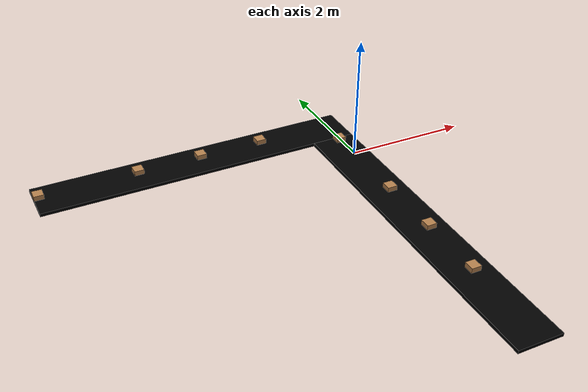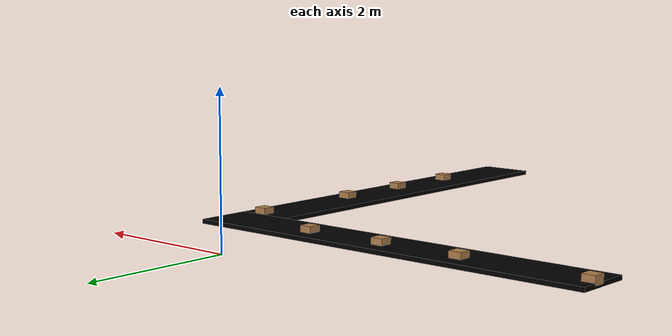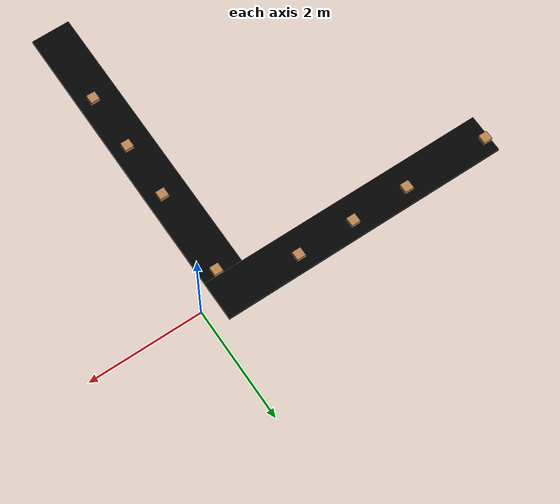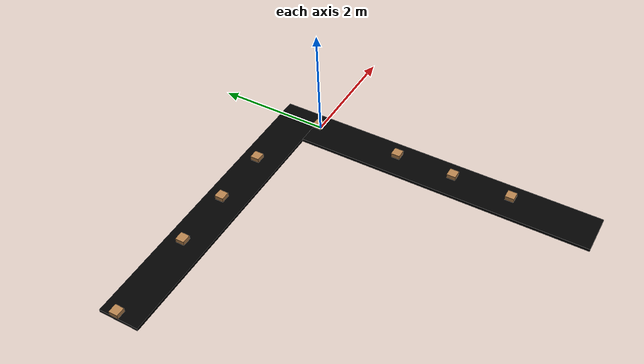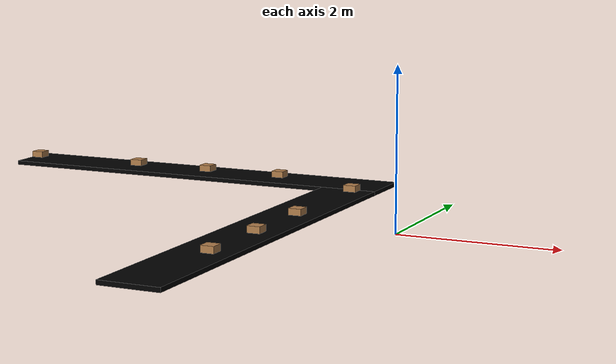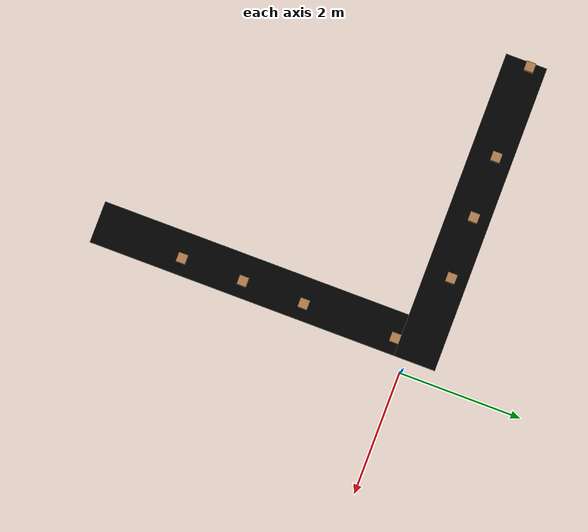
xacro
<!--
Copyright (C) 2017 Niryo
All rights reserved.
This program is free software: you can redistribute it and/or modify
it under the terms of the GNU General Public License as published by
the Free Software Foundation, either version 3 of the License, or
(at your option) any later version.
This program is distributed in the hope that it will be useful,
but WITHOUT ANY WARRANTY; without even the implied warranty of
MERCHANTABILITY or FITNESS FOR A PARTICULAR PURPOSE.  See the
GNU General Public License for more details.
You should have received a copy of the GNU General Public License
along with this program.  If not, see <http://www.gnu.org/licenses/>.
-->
<?xml version="1.0"?>
<robot xmlns:xacro="http://ros.org/wiki/xacro" name="conveyor">

     <xacro:property name="conveyor_width" value="0.67"/>
     <xacro:property name="conveyor_length" value="5.0"/>
     <xacro:property name="conveyor_mass" value="100.0"/>
     <xacro:property name="conveyor_height" value="0.05"/>
     <xacro:property name="conveyor_heigh_world" value="0.5"/>
     <xacro:property name="box_width" value="0.15"/>
     <xacro:property name="box_length" value="0.15"/>
     <xacro:property name="box_height" value="0.1"/>

    <gazebo>
        <plugin name="gazebo_ros_control" filename="libgazebo_ros_control.so">
            <robotNamespace>/conveyor</robotNamespace>
        </plugin>
    </gazebo>

    <link name="world"/>

    <link name="conveyor_link_1">
        <visual>
            <origin xyz="${conveyor_length/2} 0 0" rpy="0 0 0"/>
            <geometry>
                <box size="${conveyor_length} ${conveyor_width} ${conveyor_height}"/>
            </geometry>
            <material name="Black">
                <color rgba="0 0.0 0.0 1.0"/>
            </material>
        </visual>
        <collision>
            <origin xyz="${conveyor_length/2} 0 0" rpy="0 0 0"/>
            <geometry>
                <box size="${conveyor_length} ${conveyor_width} ${conveyor_height}"/>
            </geometry>
        </collision>
        <inertial>
            <mass value="${conveyor_mass}"/>
            <inertia ixx="${(conveyor_mass / 12) * (conveyor_width * conveyor_width + conveyor_height * conveyor_height) }" ixy="0.0" ixz="0.0" iyy="${(conveyor_mass / 12) * (conveyor_length * conveyor_length + conveyor_height * conveyor_height) }" iyz="0.0" izz="${(conveyor_mass / 12) * (conveyor_length * conveyor_length + conveyor_width * conveyor_width) }"/>
        </inertial>
    </link>
    <gazebo reference="conveyor_link_1">
        <material>Gazebo/FlatBlack</material>
        <mu1>1000.0</mu1>
        <mu2>1000.0</mu2>
    </gazebo>

     <link name="conveyor_link_2">
        <visual>
            <origin xyz="${conveyor_length/2} 0 0" rpy="0 0 0"/>
            <geometry>
                <box size="${conveyor_length} ${conveyor_width} ${conveyor_height}"/>
            </geometry>
            <material name="Black">
                <color rgba="0 0.0 0.0 1.0"/>
            </material>
        </visual>
        <collision>
            <origin xyz="${conveyor_length/2} 0 0" rpy="0 0 0"/>
            <geometry>
                <box size="${conveyor_length} ${conveyor_width} ${conveyor_height}"/>
            </geometry>
        </collision>
        <inertial>
            <mass value="${conveyor_mass}"/>
            <inertia ixx="${(conveyor_mass / 12) * (conveyor_width * conveyor_width + conveyor_height * conveyor_height) }" ixy="0.0" ixz="0.0" iyy="${(conveyor_mass / 12) * (conveyor_length * conveyor_length + conveyor_height * conveyor_height) }" iyz="0.0" izz="${(conveyor_mass / 12) * (conveyor_length * conveyor_length + conveyor_width * conveyor_width) }"/>
        </inertial>
    </link>

    <gazebo reference="conveyor_link_2">
        <material>Gazebo/FlatBlack</material>
        <mu1>1000.0</mu1>
        <mu2>1000.0</mu2>
    </gazebo>

    <link name="box_1">
        <inertial>
            <origin xyz="0 0 0" />
            <mass value="1" />
            <inertia  ixx="1" ixy="0.0"  ixz="0.0"  iyy="1"  iyz="0.0"  izz="1" />
        </inertial>
        <visual>
            <meta>
                <layer>1</layer>
            </meta>
            <origin xyz="0 0 0"/>
            <geometry>
                <box size="${box_length} ${box_width} ${box_height}" />
            </geometry>
        </visual>
        <collision>
            <origin xyz="0 0 0"/>
            <geometry>
                <box size="${box_length} ${box_width} ${box_height}" />
            </geometry>
            <surface>
                <friction>
                    <ode>
                        <mu>0.1</mu>
                        <mu2>0.1</mu2>
                    </ode>
                </friction>
            </surface>
        </collision>
    </link>
    <gazebo reference="box_1">
        <material>Gazebo/WoodPallet</material>
        <mu1>1000.0</mu1>
        <mu2>1000.0</mu2>
    </gazebo>

        <link name="box_1_2">
        <inertial>
            <origin xyz="0 0 0" />
            <mass value="1" />
            <inertia  ixx="1" ixy="0.0"  ixz="0.0"  iyy="1"  iyz="0.0"  izz="1" />
        </inertial>
        <visual>
            <meta>
                <layer>1</layer>
            </meta>
            <origin xyz="0 0 0"/>
            <geometry>
                <box size="${box_length} ${box_width} ${box_height}" />
            </geometry>
        </visual>
        <collision>
            <origin xyz="0 0 0"/>
            <geometry>
                <box size="${box_length} ${box_width} ${box_height}" />
            </geometry>
        </collision>
    </link>
    <gazebo reference="box_1_2">
        <material>Gazebo/WoodPallet</material>
        <mu1>1000.0</mu1>
        <mu2>1000.0</mu2>
    </gazebo>

            <link name="box_1_3">
        <inertial>
            <origin xyz="0 0 0" />
            <mass value="1" />
            <inertia  ixx="1" ixy="0.0"  ixz="0.0"  iyy="1"  iyz="0.0"  izz="1" />
        </inertial>
        <visual>
            <meta>
                <layer>1</layer>
            </meta>
            <origin xyz="0 0 0"/>
            <geometry>
                <box size="${box_length} ${box_width} ${box_height}" />
            </geometry>
        </visual>
        <collision>
            <origin xyz="0 0 0"/>
            <geometry>
                <box size="${box_length} ${box_width} ${box_height}" />
            </geometry>
        </collision>
    </link>
    <gazebo reference="box_1_3">
        <material>Gazebo/WoodPallet</material>
        <mu1>1000.0</mu1>
        <mu2>1000.0</mu2>
    </gazebo>

    <link name="box_1_4">
        <inertial>
            <origin xyz="0 0 0" />
            <mass value="1" />
            <inertia  ixx="1" ixy="0.0"  ixz="0.0"  iyy="1"  iyz="0.0"  izz="1" />
        </inertial>
        <visual>
            <meta>
                <layer>1</layer>
            </meta>
            <origin xyz="0 0 0"/>
            <geometry>
                <box size="${box_length} ${box_width} ${box_height}" />
            </geometry>
        </visual>
        <collision>
            <origin xyz="0 0 0"/>
            <geometry>
                <box size="${box_length} ${box_width} ${box_height}" />
            </geometry>
        </collision>
    </link>
    <gazebo reference="box_1_4">
        <material>Gazebo/WoodPallet</material>
        <mu1>1000.0</mu1>
        <mu2>1000.0</mu2>
    </gazebo>

    <link name="box_2_1">
        <inertial>
            <origin xyz="${box_length/2} ${box_width/2} 0" />
            <mass value="1" />
            <inertia  ixx="1" ixy="0.0"  ixz="0.0"  iyy="1"  iyz="0.0"  izz="1" />
        </inertial>
        <visual>
            <origin xyz="${box_length/2} ${box_width/2} 0"/>
            <geometry>
                <box size="${box_length} ${box_width} ${box_height}" />
            </geometry>
        </visual>
        <collision>
            <origin xyz="${box_length/2} ${box_width/2} 0"/>
            <geometry>
                <box size="${box_length} ${box_width} ${box_height}" />
            </geometry>
        </collision>
    </link>

    <gazebo reference="box_2_1">
        <material>Gazebo/WoodPallet</material>
        <mu1>1000.0</mu1>
        <mu2>1000.0</mu2>
    </gazebo>
    <link name="box_2_2">
        <inertial>
            <origin xyz="${box_length/2} ${box_width/2} 0" />
            <mass value="1" />
            <inertia  ixx="1" ixy="0.0"  ixz="0.0"  iyy="1"  iyz="0.0"  izz="1" />
        </inertial>
        <visual>
            <origin xyz="${box_length/2} ${box_width/2} 0"/>
            <geometry>
                <box size="${box_length} ${box_width} ${box_height}" />
            </geometry>
        </visual>
        <collision>
            <origin xyz="${box_length/2} ${box_width/2} 0"/>
            <geometry>
                <box size="${box_length} ${box_width} ${box_height}" />
            </geometry>
        </collision>
    </link>

    <gazebo reference="box_2_2">
        <material>Gazebo/WoodPallet</material>
        <mu1>1000.0</mu1>
        <mu2>1000.0</mu2>
    </gazebo>
    <link name="box_2_3">
        <inertial>
            <origin xyz="${box_length/2} ${box_width/2} 0" />
            <mass value="1" />
            <inertia  ixx="1" ixy="0.0"  ixz="0.0"  iyy="1"  iyz="0.0"  izz="1" />
        </inertial>
        <visual>
            <origin xyz="${box_length/2} ${box_width/2} 0"/>
            <geometry>
                <box size="${box_length} ${box_width} ${box_height}" />
            </geometry>
        </visual>
        <collision>
            <origin xyz="${box_length/2} ${box_width/2} 0"/>
            <geometry>
                <box size="${box_length} ${box_width} ${box_height}" />
            </geometry>
        </collision>
    </link>
    <gazebo reference="box_2_3">
        <material>Gazebo/WoodPallet</material>
        <mu1>1000.0</mu1>
        <mu2>1000.0</mu2>
    </gazebo>
     <link name="box_2_4">
        <inertial>
            <origin xyz="${box_length/2} ${box_width/2} 0" />
            <mass value="1" />
            <inertia  ixx="1" ixy="0.0"  ixz="0.0"  iyy="1"  iyz="0.0"  izz="1" />
        </inertial>
        <visual>
            <origin xyz="${box_length/2} ${box_width/2} 0"/>
            <geometry>
                <box size="${box_length} ${box_width} ${box_height}" />
            </geometry>
        </visual>
        <collision>
            <origin xyz="${box_length/2} ${box_width/2} 0"/>
            <geometry>
                <box size="${box_length} ${box_width} ${box_height}" />
            </geometry>
        </collision>
    </link>
    <gazebo reference="box_2_4">
        <material>Gazebo/WoodPallet</material>
        <mu1>1000.0</mu1>
        <mu2>1000.0</mu2>
    </gazebo>

    <joint name="world_conveyor_joint" type="fixed">
        <origin xyz="${-conveyor_length-0.2} 0.15 ${conveyor_heigh_world}" rpy="0.0 0.0 0.0"/>
        <parent link="world" />
        <child link="conveyor_link_1" />
        <axis xyz="${-conveyor_length-0.2} 0.15 ${conveyor_heigh_world}" />
        <limit effort="10000" lower="${-conveyor_length+conveyor_width/2}" upper="${conveyor_length-conveyor_width/2}" velocity="1000" />
    </joint>

    <joint name="box_conveyor_joint_1_1" type="prismatic">
        <origin xyz="${box_length/2} ${box_width/2} ${box_height/2}" rpy="0.0 0.0 0.0"/>
        <parent link="conveyor_link_1" />
        <child link="box_1" />
        <axis xyz="1 0 0" />
        <limit effort="1000" lower="0" upper="1.4" velocity="5" />
    </joint>

    <joint name="box_conveyor_joint_1_2" type="prismatic">
        <origin xyz="${box_length/2+1.5} ${box_width/2} ${box_height/2}" rpy="0.0 0.0 0.0"/>
        <parent link="conveyor_link_1" />
        <child link="box_1_2" />
        <axis xyz="1 0 0" />
        <limit effort="1000" lower="0" upper="1.4" velocity="5" />
    </joint>
    <joint name="box_conveyor_joint_1_3" type="prismatic">
        <origin xyz="${box_length/2+2.5} ${box_width/2} ${box_height/2}" rpy="0.0 0.0 0.0"/>
        <parent link="conveyor_link_1" />
        <child link="box_1_3" />
        <axis xyz="1 0 0" />
        <limit effort="1000" lower="0" upper="1.4" velocity="5" />
    </joint>

      <joint name="box_conveyor_joint_1_4" type="prismatic">
        <origin xyz="${box_length/2+3.5} ${box_width/2} ${box_height/2}" rpy="0.0 0.0 0.0"/>
        <parent link="conveyor_link_1" />
        <child link="box_1_4" />
        <axis xyz="1 0 0" />
        <limit effort="1000" lower="0" upper="1.425" velocity="5" />
    </joint>

    <joint name="conveyor_joint" type="fixed">
        <origin xyz="${conveyor_length-conveyor_width/2} ${-conveyor_width/2} 0" rpy="0.0 0.0 -1.57"/>
        <parent link="conveyor_link_1" />
        <child link="conveyor_link_2" />
        <axis xyz="0 1 0" />

    </joint>

    <joint name="box_conveyor_joint_2_1" type="prismatic">
        <origin xyz="0 0 ${box_height/2}" rpy="0.0 0.0 0.0"/>
        <parent link="conveyor_link_2" />
        <child link="box_2_1" />
        <axis xyz="1 0 0" />
        <limit effort="1000" lower="0" upper="${-conveyor_width/2+1.5}" velocity="5" />
    </joint>
    <joint name="box_conveyor_joint_2_2" type="prismatic">
        <origin xyz="1.5 0 ${box_height/2}" rpy="0.0 0.0 0.0"/>
        <parent link="conveyor_link_2" />
        <child link="box_2_2" />
        <axis xyz="1 0 0" />
        <limit effort="1000" lower="0" upper="${-conveyor_width/2+1}" velocity="5" />
    </joint>

    <joint name="box_conveyor_joint_2_3" type="prismatic">
        <origin xyz="2.5 0 ${box_height/2}" rpy="0.0 0.0 0.0"/>
        <parent link="conveyor_link_2" />
        <child link="box_2_3" />
        <axis xyz="1 0 0" />
        <limit effort="1000" lower="0" upper="${-conveyor_width/2+1}" velocity="5" />
    </joint>
    <joint name="box_conveyor_joint_2_4" type="prismatic">
        <origin xyz="3.5 0 ${box_height/2}" rpy="0.0 0.0 0.0"/>
        <parent link="conveyor_link_2" />
        <child link="box_2_4" />
        <axis xyz="1 0 0" />
        <limit effort="1000" lower="0" upper="${-conveyor_width/2+1.5}" velocity="5" />
    </joint>

</robot>
